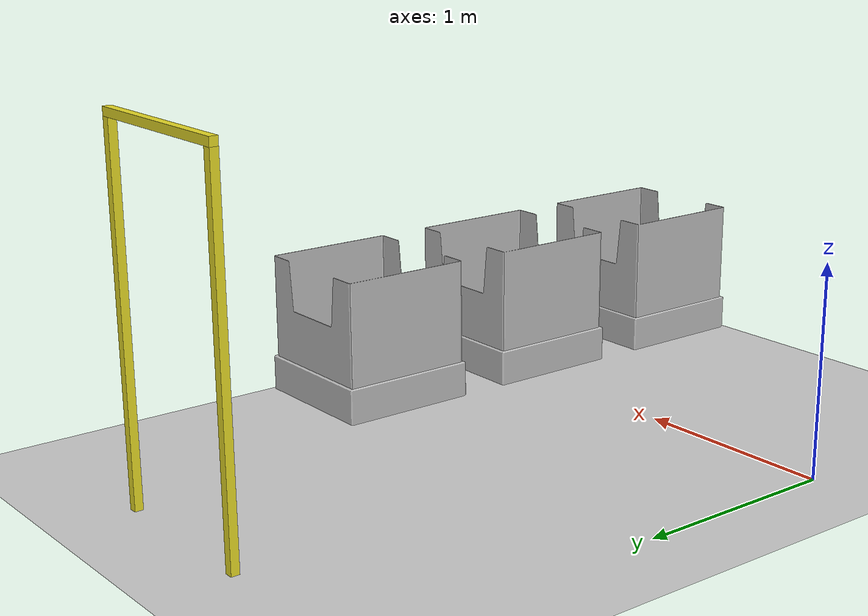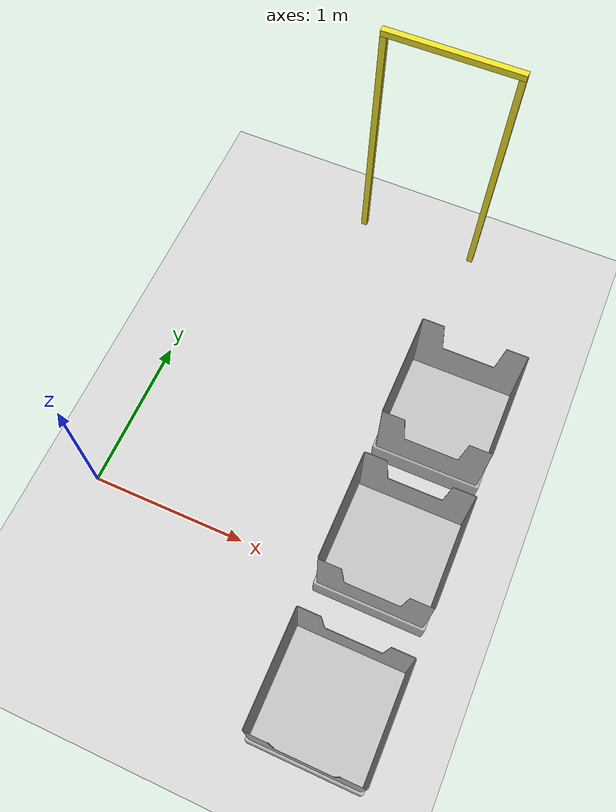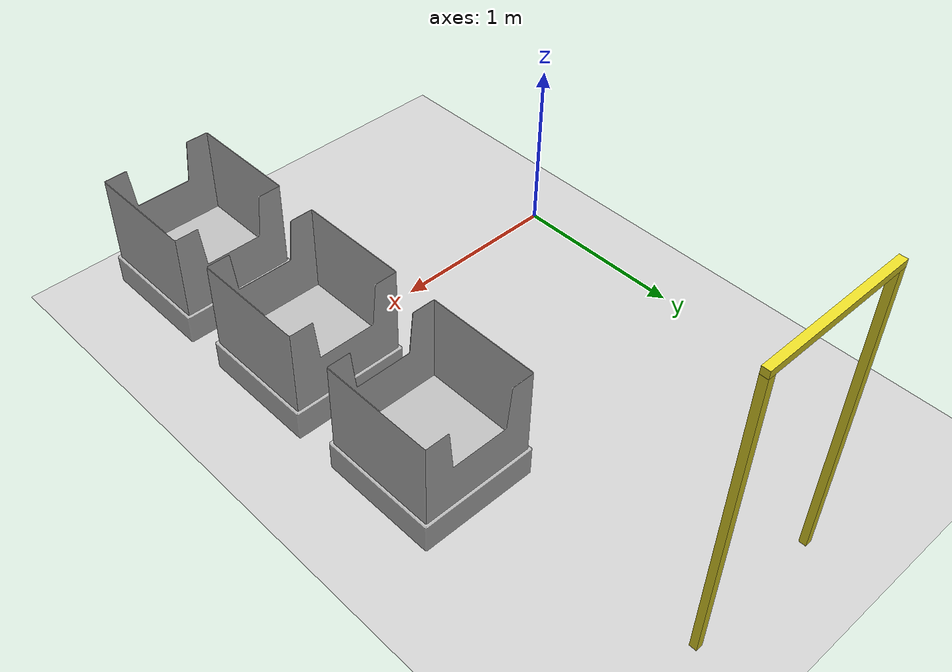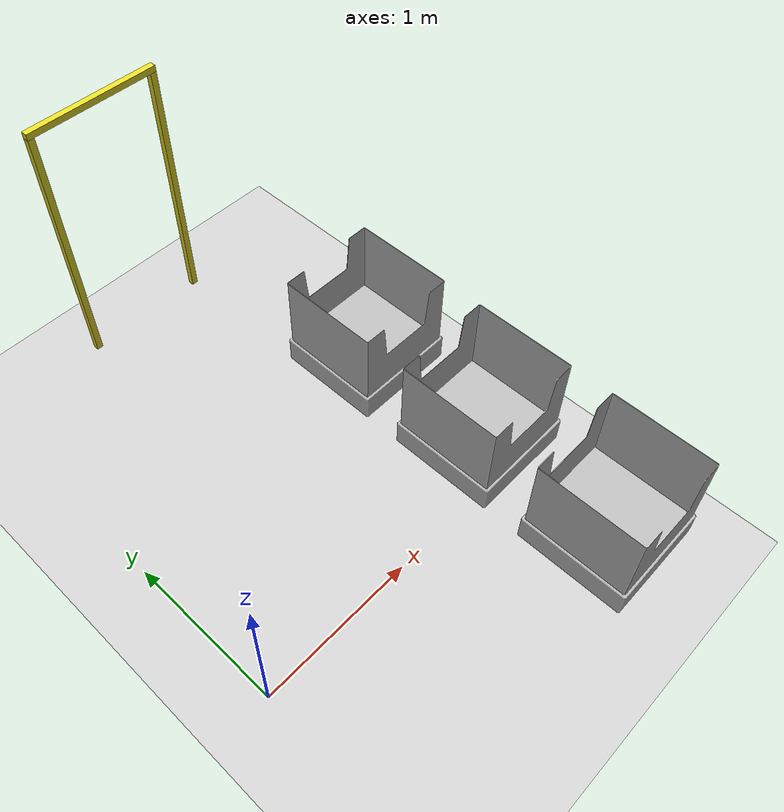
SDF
<sdf version="1.5">
 <world name="conveyor_world">
  <physics type="ode">
   <max_step_size>0.00625</max_step_size>
   <real_time_factor>1</real_time_factor>
   <real_time_update_rate>160</real_time_update_rate>
   <gravity>0 0 -9.8</gravity>
  </physics>
  <scene>
   <shadows>false</shadows>
   <ambient>0.2 0.2 0.2 1</ambient>
   <background>1 1 1 1</background>
   <grid>false</grid>
   <origin_visual>false</origin_visual>
  </scene>
  <include><uri>model://ground_plane</uri></include>
  <include><uri>model://sun</uri></include>
  <include><uri>model://workcell_bin_red</uri><pose>1.86 1.1 0.147 0 0 0</pose></include>
  <include><uri>model://workcell_bin_green</uri><pose>1.86 0.2 0.147 0 0 0</pose></include>
  <include><uri>model://workcell_bin_blue</uri><pose>1.86 -0.7 0.147 0 0 0</pose></include>
  <include><uri>model://portal_frame</uri><pose>1.2 2.5 0 0 0 -1.571</pose></include>
 </world>
</sdf>

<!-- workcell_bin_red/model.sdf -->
<sdf version="1.6">
  <model name="workcell_bin_red">
    <static>true</static>
    <link name="link">
      <visual name="visual">
        <geometry>
          <mesh>
            <uri>model://workcell_bin_red/meshes/bin_red.dae</uri>
            <scale>1.0 1.0 0.85</scale>
          </mesh>
        </geometry>
      </visual>

      <collision name="base">
        <pose>0 0 0.085 0 0 0</pose>
        <geometry>
          <box>
            <size>0.66836 0.66836 0.17</size>
          </box>
        </geometry>
      </collision>

      <collision name="left_wall">
        <pose>-0.319 0 0.42 0 0 0</pose>
        <geometry>
          <box>
            <size>0.003 0.63803 0.5</size>
          </box>
        </geometry>
      </collision>

      <collision name="right_wall">
        <pose>0.319 0 0.42 0 0 0</pose>
        <geometry>
          <box>
            <size>0.003 0.63803 0.5</size>
          </box>
        </geometry>
      </collision>

      <collision name="front_left_wall">
        <pose>-0.25331 0.31899 0.42 0 0 0</pose>
        <geometry>
          <box>
            <size>0.13437 0.003 0.5</size>
          </box>
        </geometry>
      </collision>

      <collision name="front_mid_wall">
        <pose>0 0.31899 0.3 0 0 0</pose>
        <geometry>
          <box>
            <size>0.37226 0.003 0.26</size>
          </box>
        </geometry>
      </collision>

      <collision name="front_right_wall">
        <pose>0.25331 0.31899 0.42 0 0 0</pose>
        <geometry>
          <box>
            <size>0.13437 0.003 0.5</size>
          </box>
        </geometry>
      </collision>

      <collision name="back_left_wall">
        <pose>-0.25331 -0.31899 0.42 0 0 0</pose>
        <geometry>
          <box>
            <size>0.13437 0.003 0.5</size>
          </box>
        </geometry>
      </collision>

      <collision name="back_mid_wall">
        <pose>0 -0.31899 0.3 0 0 0</pose>
        <geometry>
          <box>
            <size>0.37226 0.003 0.26</size>
          </box>
        </geometry>
      </collision>

      <collision name="back_right_wall">
        <pose>0.25331 -0.31899 0.42 0 0 0</pose>
        <geometry>
          <box>
            <size>0.13437 0.003 0.5</size>
          </box>
        </geometry>
      </collision>
    </link>
  </model>
</sdf>

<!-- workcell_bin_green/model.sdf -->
<sdf version="1.6">
  <model name="workcell_bin_green">
    <static>true</static>
    <link name="link">
      <visual name="visual">
        <geometry>
          <mesh>
            <uri>model://workcell_bin_green/meshes/bin_green.dae</uri>
            <scale>1.0 1.0 0.85</scale>
          </mesh>
        </geometry>
      </visual>

      <collision name="base">
        <pose>0 0 0.085 0 0 0</pose>
        <geometry>
          <box>
            <size>0.66836 0.66836 0.17</size>
          </box>
        </geometry>
      </collision>

      <collision name="left_wall">
        <pose>-0.319 0 0.42 0 0 0</pose>
        <geometry>
          <box>
            <size>0.003 0.63803 0.5</size>
          </box>
        </geometry>
      </collision>

      <collision name="right_wall">
        <pose>0.319 0 0.42 0 0 0</pose>
        <geometry>
          <box>
            <size>0.003 0.63803 0.5</size>
          </box>
        </geometry>
      </collision>

      <collision name="front_left_wall">
        <pose>-0.25331 0.31899 0.42 0 0 0</pose>
        <geometry>
          <box>
            <size>0.13437 0.003 0.5</size>
          </box>
        </geometry>
      </collision>

      <collision name="front_mid_wall">
        <pose>0 0.31899 0.3 0 0 0</pose>
        <geometry>
          <box>
            <size>0.37226 0.003 0.26</size>
          </box>
        </geometry>
      </collision>

      <collision name="front_right_wall">
        <pose>0.25331 0.31899 0.42 0 0 0</pose>
        <geometry>
          <box>
            <size>0.13437 0.003 0.5</size>
          </box>
        </geometry>
      </collision>

      <collision name="back_left_wall">
        <pose>-0.25331 -0.31899 0.42 0 0 0</pose>
        <geometry>
          <box>
            <size>0.13437 0.003 0.5</size>
          </box>
        </geometry>
      </collision>

      <collision name="back_mid_wall">
        <pose>0 -0.31899 0.3 0 0 0</pose>
        <geometry>
          <box>
            <size>0.37226 0.003 0.26</size>
          </box>
        </geometry>
      </collision>

      <collision name="back_right_wall">
        <pose>0.25331 -0.31899 0.42 0 0 0</pose>
        <geometry>
          <box>
            <size>0.13437 0.003 0.5</size>
          </box>
        </geometry>
      </collision>
    </link>
  </model>
</sdf>

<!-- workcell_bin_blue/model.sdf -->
<sdf version="1.6">
  <model name="workcell_bin_blue">
    <static>true</static>
    <link name="link">
      <visual name="visual">
        <geometry>
          <mesh>
            <uri>model://workcell_bin_blue/meshes/bin_blue.dae</uri>
            <scale>1.0 1.0 0.85</scale>
          </mesh>
        </geometry>
      </visual>

      <collision name="base">
        <pose>0 0 0.085 0 0 0</pose>
        <geometry>
          <box>
            <size>0.66836 0.66836 0.17</size>
          </box>
        </geometry>
      </collision>

      <collision name="left_wall">
        <pose>-0.319 0 0.42 0 0 0</pose>
        <geometry>
          <box>
            <size>0.003 0.63803 0.5</size>
          </box>
        </geometry>
      </collision>

      <collision name="right_wall">
        <pose>0.319 0 0.42 0 0 0</pose>
        <geometry>
          <box>
            <size>0.003 0.63803 0.5</size>
          </box>
        </geometry>
      </collision>

      <collision name="front_left_wall">
        <pose>-0.25331 0.31899 0.42 0 0 0</pose>
        <geometry>
          <box>
            <size>0.13437 0.003 0.5</size>
          </box>
        </geometry>
      </collision>

      <collision name="front_mid_wall">
        <pose>0 0.31899 0.3 0 0 0</pose>
        <geometry>
          <box>
            <size>0.37226 0.003 0.26</size>
          </box>
        </geometry>
      </collision>

      <collision name="front_right_wall">
        <pose>0.25331 0.31899 0.42 0 0 0</pose>
        <geometry>
          <box>
            <size>0.13437 0.003 0.5</size>
          </box>
        </geometry>
      </collision>

      <collision name="back_left_wall">
        <pose>-0.25331 -0.31899 0.42 0 0 0</pose>
        <geometry>
          <box>
            <size>0.13437 0.003 0.5</size>
          </box>
        </geometry>
      </collision>

      <collision name="back_mid_wall">
        <pose>0 -0.31899 0.3 0 0 0</pose>
        <geometry>
          <box>
            <size>0.37226 0.003 0.26</size>
          </box>
        </geometry>
      </collision>

      <collision name="back_right_wall">
        <pose>0.25331 -0.31899 0.42 0 0 0</pose>
        <geometry>
          <box>
            <size>0.13437 0.003 0.5</size>
          </box>
        </geometry>
      </collision>
    </link>
  </model>
</sdf>

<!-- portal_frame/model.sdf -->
<sdf version="1.6">
  <model name="portal_frame">
    <static>true</static>
    <link name="link">

     <visual name="viz_top_bar">
        <pose>0 0 1.705 0 0 0</pose>
        <geometry>
          <box>
            <size>0.04 0.84 0.04</size>
          </box>
        </geometry>
        <material>
          <script>
            <uri>model://portal_frame/materials/scripts</uri>
            <uri>model://portal_frame/materials/textures</uri>
            <!-- name must match a name declared inside .material file -->
            <name>technical_saefty_yellow</name>
          </script>
        </material>
      </visual>

      <collision name="top_bar">
        <pose>0 0 1.705 0 0 0</pose>
        <geometry>
          <box>
            <size>0.04 0.84 0.04</size>
          </box>
        </geometry>
      </collision>

      <visual name="viz_front">
        <pose>0 0.4 0.835 0 0 0</pose>
        <geometry>
          <box>
            <size>0.04 0.04 1.7</size>
          </box>
        </geometry>
        <material>
          <script>
            <uri>model://portal_frame/materials/scripts</uri>
            <uri>model://portal_frame/materials/textures</uri>
            <name>technical_saefty_yellow</name>
          </script>
        </material>
      </visual>

      <collision name="front">
        <pose>0 0.4 0.835 0 0 0</pose>
        <geometry>
          <box>
            <size>0.04 0.04 1.7</size>
          </box>
        </geometry>
      </collision>

      <visual name="viz_back">
        <pose>0 -0.4 0.835 0 0 0</pose>
        <geometry>
          <box>
              <size>0.04 0.04 1.7</size>
          </box>
        </geometry>
        <material>
          <script>
            <uri>model://portal_frame/materials/scripts</uri>
            <uri>model://portal_frame/materials/textures</uri>
            <name>technical_saefty_yellow</name>
          </script>
        </material>
      </visual>

      <collision name="back">
        <pose>0 -0.4 0.835 0 0 0</pose>
        <geometry>
          <box>
              <size>0.04 0.04 1.7</size>
          </box>
        </geometry>
      </collision>

    </link>
  </model>
</sdf>
